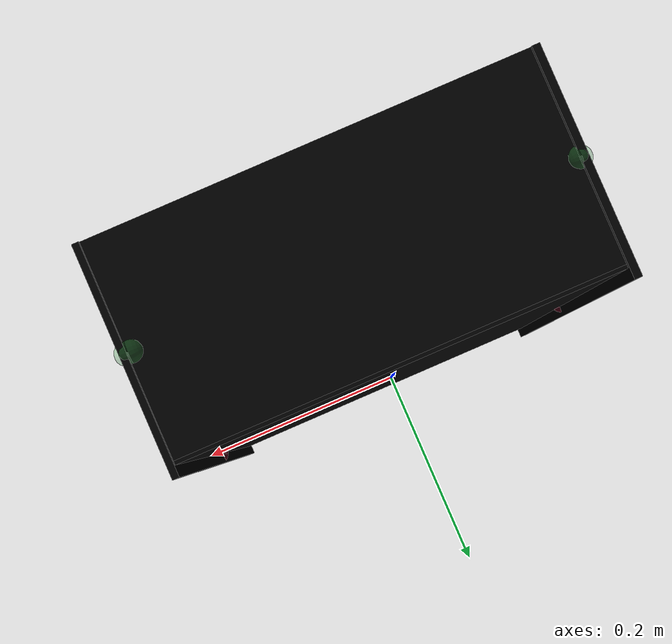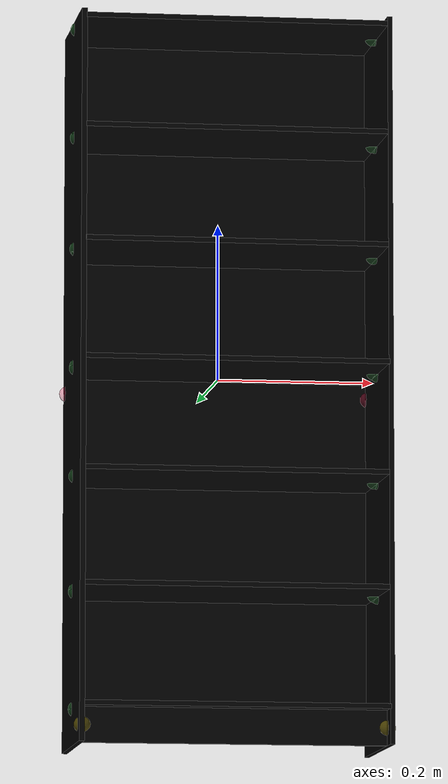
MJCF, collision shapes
<mujoco model="bookcase_billy_0191">
    <asset>
        <mesh file="bookcase_billy_0191/0.stl" name="part0" scale="0.0005 0.0005 0.0005"/>
        <mesh file="bookcase_billy_0191/9.stl" name="part9" scale="0.0005 0.0005 0.0005"/>
        <mesh file="bookcase_billy_0191/8.stl" name="part8" scale="0.0005 0.0005 0.0005"/>
        <mesh file="bookcase_billy_0191/7.stl" name="part7" scale="0.0005 0.0005 0.0005"/>
        <mesh file="bookcase_billy_0191/6.stl" name="part6" scale="0.0005 0.0005 0.0005"/>
        <mesh file="bookcase_billy_0191/5.stl" name="part5" scale="0.0005 0.0005 0.0005"/>
        <mesh file="bookcase_billy_0191/4.stl" name="part4" scale="0.0005 0.0005 0.0005"/>
        <mesh file="bookcase_billy_0191/3.stl" name="part3" scale="0.0005 0.0005 0.0005"/>
        <mesh file="bookcase_billy_0191/2.stl" name="part2" scale="0.0005 0.0005 0.0005"/>
        <mesh file="bookcase_billy_0191/10.stl" name="part10" scale="0.0005 0.0005 0.0005"/>
        <mesh file="bookcase_billy_0191/1.stl" name="part1" scale="0.0005 0.0005 0.0005"/>
    </asset>
    <equality>
        <weld active="false" body1="0_part0" body2="4_part4" solimp="1 1 0.5" solref="0.01 0.3"/>
        <weld active="false" body1="0_part0" body2="6_part6" solimp="1 1 0.5" solref="0.01 0.3"/>
        <weld active="false" body1="0_part0" body2="3_part3" solimp="1 1 0.5" solref="0.01 0.3"/>
        <weld active="false" body1="0_part0" body2="1_part1" solimp="1 1 0.5" solref="0.01 0.3"/>
        <weld active="false" body1="10_part10" body2="3_part3" solimp="1 1 0.5" solref="0.01 0.3"/>
        <weld active="false" body1="10_part10" body2="1_part1" solimp="1 1 0.5" solref="0.01 0.3"/>
        <weld active="false" body1="9_part9" body2="3_part3" solimp="1 1 0.5" solref="0.01 0.3"/>
        <weld active="false" body1="9_part9" body2="1_part1" solimp="1 1 0.5" solref="0.01 0.3"/>
        <weld active="false" body1="8_part8" body2="3_part3" solimp="1 1 0.5" solref="0.01 0.3"/>
        <weld active="false" body1="8_part8" body2="1_part1" solimp="1 1 0.5" solref="0.01 0.3"/>
        <weld active="false" body1="7_part7" body2="3_part3" solimp="1 1 0.5" solref="0.01 0.3"/>
        <weld active="false" body1="7_part7" body2="1_part1" solimp="1 1 0.5" solref="0.01 0.3"/>
        <weld active="false" body1="6_part6" body2="3_part3" solimp="1 1 0.5" solref="0.01 0.3"/>
        <weld active="false" body1="6_part6" body2="1_part1" solimp="1 1 0.5" solref="0.01 0.3"/>
        <weld active="false" body1="5_part5" body2="3_part3" solimp="1 1 0.5" solref="0.01 0.3"/>
        <weld active="false" body1="5_part5" body2="1_part1" solimp="1 1 0.5" solref="0.01 0.3"/>
        <weld active="false" body1="4_part4" body2="3_part3" solimp="1 1 0.5" solref="0.01 0.3"/>
        <weld active="false" body1="4_part4" body2="1_part1" solimp="1 1 0.5" solref="0.01 0.3"/>
        <weld active="false" body1="4_part4" body2="2_part2" solimp="1 1 0.5" solref="0.01 0.3"/>
        <weld active="false" body1="5_part5" body2="1_part1" solimp="1 1 0.5" solref="0.01 0.3"/>
        <weld active="false" body1="5_part5" body2="3_part3" solimp="1 1 0.5" solref="0.01 0.3"/>
        <weld active="false" body1="10_part10" body2="1_part1" solimp="1 1 0.5" solref="0.01 0.3"/>
        <weld active="false" body1="10_part10" body2="3_part3" solimp="1 1 0.5" solref="0.01 0.3"/>
        <weld active="false" body1="4_part4" body2="1_part1" solimp="1 1 0.5" solref="0.01 0.3"/>
        <weld active="false" body1="4_part4" body2="3_part3" solimp="1 1 0.5" solref="0.01 0.3"/>
        <weld active="false" body1="9_part9" body2="1_part1" solimp="1 1 0.5" solref="0.01 0.3"/>
        <weld active="false" body1="9_part9" body2="3_part3" solimp="1 1 0.5" solref="0.01 0.3"/>
        <weld active="false" body1="8_part8" body2="1_part1" solimp="1 1 0.5" solref="0.01 0.3"/>
        <weld active="false" body1="8_part8" body2="3_part3" solimp="1 1 0.5" solref="0.01 0.3"/>
        <weld active="false" body1="7_part7" body2="1_part1" solimp="1 1 0.5" solref="0.01 0.3"/>
        <weld active="false" body1="7_part7" body2="3_part3" solimp="1 1 0.5" solref="0.01 0.3"/>
        <weld active="false" body1="6_part6" body2="1_part1" solimp="1 1 0.5" solref="0.01 0.3"/>
        <weld active="false" body1="6_part6" body2="3_part3" solimp="1 1 0.5" solref="0.01 0.3"/>
        <weld active="false" body1="1_part1" body2="2_part2" solimp="1 1 0.5" solref="0.01 0.3"/>
        <weld active="false" body1="3_part3" body2="2_part2" solimp="1 1 0.5" solref="0.01 0.3"/>
        <weld active="false" body1="0_part0" body2="1_part1" solimp="1 1 0.5" solref="0.01 0.3"/>
        <weld active="false" body1="0_part0" body2="3_part3" solimp="1 1 0.5" solref="0.01 0.3"/>
    </equality>
    <worldbody>
        <body name="0_part0" pos="-0.0 0.0 -0.0" quat="1 0 0 0">
            <geom conaffinity="0" contype="0" density="0" mesh="part0" name="0_part0_mesh" pos="0.0 0.0 0.0"
                  rgba="0.82 0.71 0.55 1" type="mesh"/>
            <site name="0_part0_horizontal_radius_site" pos="-0.0 0.0 -0.0" quat="1 0 0 0" rgba="0 0 0 0"
                  size="0.0005"/>
            <site name="0_part0_top_site" pos="0.0 0.0 0.43497500000000006" quat="1 0 0 0" rgba="0 0 0 0"
                  size="0.0005"/>
            <site name="0_part0_bottom_site" pos="0.0 0.0 -0.43497500000000006" quat="1 0 0 0" rgba="0 0 0 0"
                  size="0.0005"/>
            <site name="0_part0_corner_site8" pos="-0.19208750000000002 0.0017216291 0.43497500000000006" quat="1 0 0 0"
                  rgba="0 0 0 0" size="0.01"/>
            <site name="0_part0_corner_site7" pos="0.19208750000000002 0.0017216291 0.43497500000000006" quat="1 0 0 0"
                  rgba="0 0 0 0" size="0.01"/>
            <site name="0_part0_corner_site6" pos="0.19208750000000002 -0.0017216291 0.43497500000000006" quat="1 0 0 0"
                  rgba="0 0 0 0" size="0.01"/>
            <site name="0_part0_corner_site5" pos="-0.19208750000000002 -0.0017216291 0.43497500000000006"
                  quat="1 0 0 0" rgba="0 0 0 0" size="0.01"/>
            <site name="0_part0_corner_site4" pos="-0.19208750000000002 0.0017216291 -0.43497500000000006"
                  quat="1 0 0 0" rgba="0 0 0 0" size="0.01"/>
            <site name="0_part0_corner_site3" pos="0.19208750000000002 0.0017216291 -0.43497500000000006" quat="1 0 0 0"
                  rgba="0 0 0 0" size="0.01"/>
            <site name="0_part0_corner_site2" pos="0.19208750000000002 -0.0017216291 -0.43497500000000006"
                  quat="1 0 0 0" rgba="0 0 0 0" size="0.01"/>
            <site name="0_part0_corner_site1" pos="-0.19208750000000002 -0.0017216291 -0.43497500000000006"
                  quat="1 0 0 0" rgba="0 0 0 0" size="0.01"/>
            <site name="back-wall,0,180,conn_site1" pos="-0.1935 -0.002 -0.02222499" quat="0.707 0.707 0 0"
                  rgba="0.9019 0.0980 0.2941 0.3" size="0.01"/>
            <site name="back-wall,0,180,conn_site3" pos="0.1955 0.0015 -0.02222499" quat="0.707 0.707 0 0"
                  rgba="0.9019 0.0980 0.2941 0.3" size="0.01"/>
            <geom density="50" name="noviz_collision_0_part0_0" pos="0.0 0.0 0.0" quat="1 0 0 0" rgba="0 0 0 0"
                  size="0.19209 0.00172 0.434975" solref="0.001 1" type="box"/>
        </body>
        <body name="10_part10" pos="1.5e-09 -0.09372957270000001 -0.2831041687" quat="1 0 0 0">
            <geom conaffinity="0" contype="0" density="0" mesh="part9" name="10_part10_mesh" pos="0.0 0.0 0.0"
                  rgba="0.82 0.71 0.55 1" type="mesh"/>
            <site name="10_part10_horizontal_radius_site" pos="-1.5e-09 1.4e-09 0.0" quat="1 0 0 0" rgba="0 0 0 0"
                  size="0.0005"/>
            <site name="10_part10_top_site" pos="-1.5e-09 1.4500000000000002e-09 0.00317500305" quat="1 0 0 0"
                  rgba="0 0 0 0" size="0.0005"/>
            <site name="10_part10_bottom_site" pos="-1.5e-09 1.4500000000000002e-09 -0.00317500305" quat="1 0 0 0"
                  rgba="0 0 0 0" size="0.0005"/>
            <site name="10_part10_corner_site8" pos="-0.190500003 0.09200794505000001 0.00317500305" quat="1 0 0 0"
                  rgba="0 0 0 0" size="0.01"/>
            <site name="10_part10_corner_site7" pos="0.1905 0.09200794505000001 0.00317500305" quat="1 0 0 0"
                  rgba="0 0 0 0" size="0.01"/>
            <site name="10_part10_corner_site6" pos="0.1905 -0.0920079422 0.00317500305" quat="1 0 0 0" rgba="0 0 0 0"
                  size="0.01"/>
            <site name="10_part10_corner_site5" pos="-0.190500003 -0.0920079422 0.00317500305" quat="1 0 0 0"
                  rgba="0 0 0 0" size="0.01"/>
            <site name="10_part10_corner_site4" pos="-0.190500003 0.09200794505000001 -0.00317500305" quat="1 0 0 0"
                  rgba="0 0 0 0" size="0.01"/>
            <site name="10_part10_corner_site3" pos="0.1905 0.09200794505000001 -0.00317500305" quat="1 0 0 0"
                  rgba="0 0 0 0" size="0.01"/>
            <site name="10_part10_corner_site2" pos="0.1905 -0.0920079422 -0.00317500305" quat="1 0 0 0" rgba="0 0 0 0"
                  size="0.01"/>
            <site name="10_part10_corner_site1" pos="-0.190500003 -0.0920079422 -0.00317500305" quat="1 0 0 0"
                  rgba="0 0 0 0" size="0.01"/>
            <site name="flat-wall,0,180,conn_site10l" pos="-0.1908 0.001621 0.0" quat="0.707 0 -0.707 0"
                  rgba="0.2352 0.7058 0.2941 0.3" size="0.01"/>
            <site name="flat-wall,0,180,conn_site10r" pos="0.18695 0.001621 0.0" quat="0.707 0 0.707 0"
                  rgba="0.2352 0.7058 0.2941 0.3" size="0.01"/>
            <geom density="50" name="noviz_collision_10_part10_0" pos="0.0 0.0 0.0" quat="1 0 0 0" rgba="0 0 0 0"
                  size="0.1905 0.09201 0.003175" solref="0.001 1" type="box"/>
        </body>
        <body name="9_part9" pos="1.5e-09 -0.09372957270000001 -0.13917083435000002" quat="1 0 0 0">
            <geom conaffinity="0" contype="0" density="0" mesh="part9" name="9_part9_mesh" pos="0.0 0.0 0.0"
                  rgba="0.82 0.71 0.55 1" type="mesh"/>
            <site name="9_part9_horizontal_radius_site" pos="-1.5e-09 1.4e-09 0.0" quat="1 0 0 0" rgba="0 0 0 0"
                  size="0.0005"/>
            <site name="9_part9_top_site" pos="-1.5e-09 1.4500000000000002e-09 0.00317500305" quat="1 0 0 0"
                  rgba="0 0 0 0" size="0.0005"/>
            <site name="9_part9_bottom_site" pos="-1.5e-09 1.4500000000000002e-09 -0.00317500305" quat="1 0 0 0"
                  rgba="0 0 0 0" size="0.0005"/>
            <site name="9_part9_corner_site8" pos="-0.190500003 0.09200794505000001 0.00317500305" quat="1 0 0 0"
                  rgba="0 0 0 0" size="0.01"/>
            <site name="9_part9_corner_site7" pos="0.1905 0.09200794505000001 0.00317500305" quat="1 0 0 0"
                  rgba="0 0 0 0" size="0.01"/>
            <site name="9_part9_corner_site6" pos="0.1905 -0.0920079422 0.00317500305" quat="1 0 0 0" rgba="0 0 0 0"
                  size="0.01"/>
            <site name="9_part9_corner_site5" pos="-0.190500003 -0.0920079422 0.00317500305" quat="1 0 0 0"
                  rgba="0 0 0 0" size="0.01"/>
            <site name="9_part9_corner_site4" pos="-0.190500003 0.09200794505000001 -0.00317500305" quat="1 0 0 0"
                  rgba="0 0 0 0" size="0.01"/>
            <site name="9_part9_corner_site3" pos="0.1905 0.09200794505000001 -0.00317500305" quat="1 0 0 0"
                  rgba="0 0 0 0" size="0.01"/>
            <site name="9_part9_corner_site2" pos="0.1905 -0.0920079422 -0.00317500305" quat="1 0 0 0" rgba="0 0 0 0"
                  size="0.01"/>
            <site name="9_part9_corner_site1" pos="-0.190500003 -0.0920079422 -0.00317500305" quat="1 0 0 0"
                  rgba="0 0 0 0" size="0.01"/>
            <site name="flat-wall,0,180,conn_site9l" pos="-0.1908 0.001621 0.0" quat="0.707 0 -0.707 0"
                  rgba="0.2352 0.7058 0.2941 0.3" size="0.01"/>
            <site name="flat-wall,0,180,conn_site9r" pos="0.18695 0.001621 0.0" quat="0.707 0 0.707 0"
                  rgba="0.2352 0.7058 0.2941 0.3" size="0.01"/>
            <geom density="50" name="noviz_collision_9_part9_0" pos="0.0 0.0 0.0" quat="1 0 0 0" rgba="0 0 0 0"
                  size="0.1905 0.09201 0.003175" solref="0.001 1" type="box"/>
        </body>
        <body name="8_part8" pos="1.5e-09 -0.09372957270000001 0.29262917685" quat="1 0 0 0">
            <geom conaffinity="0" contype="0" density="0" mesh="part8" name="8_part8_mesh" pos="0.0 0.0 0.0"
                  rgba="0.82 0.71 0.55 1" type="mesh"/>
            <site name="8_part8_horizontal_radius_site" pos="-1.5e-09 1.4e-09 0.0" quat="1 0 0 0" rgba="0 0 0 0"
                  size="0.0005"/>
            <site name="8_part8_top_site" pos="-1.5e-09 1.4500000000000002e-09 0.0031750102" quat="1 0 0 0"
                  rgba="0 0 0 0" size="0.0005"/>
            <site name="8_part8_bottom_site" pos="-1.5e-09 1.4500000000000002e-09 -0.00317501015" quat="1 0 0 0"
                  rgba="0 0 0 0" size="0.0005"/>
            <site name="8_part8_corner_site8" pos="-0.190500003 0.09200794505000001 0.0031750102" quat="1 0 0 0"
                  rgba="0 0 0 0" size="0.01"/>
            <site name="8_part8_corner_site7" pos="0.1905 0.09200794505000001 0.0031750102" quat="1 0 0 0"
                  rgba="0 0 0 0" size="0.01"/>
            <site name="8_part8_corner_site6" pos="0.1905 -0.0920079422 0.0031750102" quat="1 0 0 0" rgba="0 0 0 0"
                  size="0.01"/>
            <site name="8_part8_corner_site5" pos="-0.190500003 -0.0920079422 0.0031750102" quat="1 0 0 0"
                  rgba="0 0 0 0" size="0.01"/>
            <site name="8_part8_corner_site4" pos="-0.190500003 0.09200794505000001 -0.00317501015" quat="1 0 0 0"
                  rgba="0 0 0 0" size="0.01"/>
            <site name="8_part8_corner_site3" pos="0.1905 0.09200794505000001 -0.00317501015" quat="1 0 0 0"
                  rgba="0 0 0 0" size="0.01"/>
            <site name="8_part8_corner_site2" pos="0.1905 -0.0920079422 -0.00317501015" quat="1 0 0 0" rgba="0 0 0 0"
                  size="0.01"/>
            <site name="8_part8_corner_site1" pos="-0.190500003 -0.0920079422 -0.00317501015" quat="1 0 0 0"
                  rgba="0 0 0 0" size="0.01"/>
            <site name="flat-wall,0,180,conn_site8l" pos="-0.1908 0.001621 0.0" quat="0.707 0 -0.707 0"
                  rgba="0.2352 0.7058 0.2941 0.3" size="0.01"/>
            <site name="flat-wall,0,180,conn_site8r" pos="0.18695 0.001621 0.0" quat="0.707 0 0.707 0"
                  rgba="0.2352 0.7058 0.2941 0.3" size="0.01"/>
            <geom density="50" name="noviz_collision_8_part8_0" pos="0.0 0.0 0.0" quat="1 0 0 0" rgba="0 0 0 0"
                  size="0.1905 0.09201 0.003175" solref="0.001 1" type="box"/>
        </body>
        <body name="7_part7" pos="1.5e-09 -0.09372957270000001 0.1486958191" quat="1 0 0 0">
            <geom conaffinity="0" contype="0" density="0" mesh="part7" name="7_part7_mesh" pos="0.0 0.0 0.0"
                  rgba="0.82 0.71 0.55 1" type="mesh"/>
            <site name="7_part7_horizontal_radius_site" pos="-1.5e-09 1.4e-09 0.0" quat="1 0 0 0" rgba="0 0 0 0"
                  size="0.0005"/>
            <site name="7_part7_top_site" pos="-1.5e-09 1.4500000000000002e-09 0.0031750183" quat="1 0 0 0"
                  rgba="0 0 0 0" size="0.0005"/>
            <site name="7_part7_bottom_site" pos="-1.5e-09 1.4500000000000002e-09 -0.0031750183" quat="1 0 0 0"
                  rgba="0 0 0 0" size="0.0005"/>
            <site name="7_part7_corner_site8" pos="-0.190500003 0.09200794505000001 0.0031750183" quat="1 0 0 0"
                  rgba="0 0 0 0" size="0.01"/>
            <site name="7_part7_corner_site7" pos="0.1905 0.09200794505000001 0.0031750183" quat="1 0 0 0"
                  rgba="0 0 0 0" size="0.01"/>
            <site name="7_part7_corner_site6" pos="0.1905 -0.0920079422 0.0031750183" quat="1 0 0 0" rgba="0 0 0 0"
                  size="0.01"/>
            <site name="7_part7_corner_site5" pos="-0.190500003 -0.0920079422 0.0031750183" quat="1 0 0 0"
                  rgba="0 0 0 0" size="0.01"/>
            <site name="7_part7_corner_site4" pos="-0.190500003 0.09200794505000001 -0.0031750183" quat="1 0 0 0"
                  rgba="0 0 0 0" size="0.01"/>
            <site name="7_part7_corner_site3" pos="0.1905 0.09200794505000001 -0.0031750183" quat="1 0 0 0"
                  rgba="0 0 0 0" size="0.01"/>
            <site name="7_part7_corner_site2" pos="0.1905 -0.0920079422 -0.0031750183" quat="1 0 0 0" rgba="0 0 0 0"
                  size="0.01"/>
            <site name="7_part7_corner_site1" pos="-0.190500003 -0.0920079422 -0.0031750183" quat="1 0 0 0"
                  rgba="0 0 0 0" size="0.01"/>
            <site name="flat-wall,0,180,conn_site7l" pos="-0.1908 0.001621 0.0" quat="0.707 0 -0.707 0"
                  rgba="0.2352 0.7058 0.2941 0.3" size="0.01"/>
            <site name="flat-wall,0,180,conn_site7r" pos="0.18695 0.001621 0.0" quat="0.707 0 0.707 0"
                  rgba="0.2352 0.7058 0.2941 0.3" size="0.01"/>
            <geom density="50" name="noviz_collision_7_part7_0" pos="0.0 0.0 0.0" quat="1 0 0 0" rgba="0 0 0 0"
                  size="0.1905 0.09201 0.003175" solref="0.001 1" type="box"/>
        </body>
        <body name="6_part6" pos="1.5e-09 -0.09372957270000001 0.4318000061" quat="1 0 0 0">
            <geom conaffinity="0" contype="0" density="0" mesh="part6" name="6_part6_mesh" pos="0.0 0.0 0.0"
                  rgba="0.82 0.71 0.55 1" type="mesh"/>
            <site name="6_part6_horizontal_radius_site" pos="-1.5e-09 1.4e-09 0.0" quat="1 0 0 0" rgba="0 0 0 0"
                  size="0.0005"/>
            <site name="6_part6_top_site" pos="-1.5e-09 1.4500000000000002e-09 0.0031750183" quat="1 0 0 0"
                  rgba="0 0 0 0" size="0.0005"/>
            <site name="6_part6_bottom_site" pos="-1.5e-09 1.4500000000000002e-09 -0.0031750183" quat="1 0 0 0"
                  rgba="0 0 0 0" size="0.0005"/>
            <site name="6_part6_corner_site8" pos="-0.190500003 0.09200794505000001 0.0031750183" quat="1 0 0 0"
                  rgba="0 0 0 0" size="0.01"/>
            <site name="6_part6_corner_site7" pos="0.1905 0.09200794505000001 0.0031750183" quat="1 0 0 0"
                  rgba="0 0 0 0" size="0.01"/>
            <site name="6_part6_corner_site6" pos="0.1905 -0.0920079422 0.0031750183" quat="1 0 0 0" rgba="0 0 0 0"
                  size="0.01"/>
            <site name="6_part6_corner_site5" pos="-0.190500003 -0.0920079422 0.0031750183" quat="1 0 0 0"
                  rgba="0 0 0 0" size="0.01"/>
            <site name="6_part6_corner_site4" pos="-0.190500003 0.09200794505000001 -0.0031750183" quat="1 0 0 0"
                  rgba="0 0 0 0" size="0.01"/>
            <site name="6_part6_corner_site3" pos="0.1905 0.09200794505000001 -0.0031750183" quat="1 0 0 0"
                  rgba="0 0 0 0" size="0.01"/>
            <site name="6_part6_corner_site2" pos="0.1905 -0.0920079422 -0.0031750183" quat="1 0 0 0" rgba="0 0 0 0"
                  size="0.01"/>
            <site name="6_part6_corner_site1" pos="-0.190500003 -0.0920079422 -0.0031750183" quat="1 0 0 0"
                  rgba="0 0 0 0" size="0.01"/>
            <site name="flat-wall,0,180,conn_site6l" pos="-0.1908 0.001621 0.0" quat="0.707 0 -0.707 0"
                  rgba="0.2352 0.7058 0.2941 0.3" size="0.01"/>
            <site name="flat-wall,0,180,conn_site6r" pos="0.18695 0.001621 0.0" quat="0.707 0 0.707 0"
                  rgba="0.2352 0.7058 0.2941 0.3" size="0.01"/>
            <geom density="50" name="noviz_collision_6_part6_0" pos="0.0 0.0 0.0" quat="1 0 0 0" rgba="0 0 0 0"
                  size="0.1905 0.09201 0.003175" solref="0.001 1" type="box"/>
        </body>
        <body name="5_part5" pos="1.5e-09 -0.09372957270000001 3.05e-09" quat="1 0 0 0">
            <geom conaffinity="0" contype="0" density="0" mesh="part4" name="5_part5_mesh" pos="0.0 0.0 0.0"
                  rgba="0.82 0.71 0.55 1" type="mesh"/>
            <site name="5_part5_horizontal_radius_site" pos="-1.5e-09 1.4e-09 -0.0" quat="1 0 0 0" rgba="0 0 0 0"
                  size="0.0005"/>
            <site name="5_part5_top_site" pos="-1.5e-09 1.4500000000000002e-09 0.00317500305" quat="1 0 0 0"
                  rgba="0 0 0 0" size="0.0005"/>
            <site name="5_part5_bottom_site" pos="-1.5e-09 1.4500000000000002e-09 -0.00317500305" quat="1 0 0 0"
                  rgba="0 0 0 0" size="0.0005"/>
            <site name="5_part5_corner_site8" pos="-0.190500003 0.09200794505000001 0.00317500305" quat="1 0 0 0"
                  rgba="0 0 0 0" size="0.01"/>
            <site name="5_part5_corner_site7" pos="0.1905 0.09200794505000001 0.00317500305" quat="1 0 0 0"
                  rgba="0 0 0 0" size="0.01"/>
            <site name="5_part5_corner_site6" pos="0.1905 -0.0920079422 0.00317500305" quat="1 0 0 0" rgba="0 0 0 0"
                  size="0.01"/>
            <site name="5_part5_corner_site5" pos="-0.190500003 -0.0920079422 0.00317500305" quat="1 0 0 0"
                  rgba="0 0 0 0" size="0.01"/>
            <site name="5_part5_corner_site4" pos="-0.190500003 0.09200794505000001 -0.00317500305" quat="1 0 0 0"
                  rgba="0 0 0 0" size="0.01"/>
            <site name="5_part5_corner_site3" pos="0.1905 0.09200794505000001 -0.00317500305" quat="1 0 0 0"
                  rgba="0 0 0 0" size="0.01"/>
            <site name="5_part5_corner_site2" pos="0.1905 -0.0920079422 -0.00317500305" quat="1 0 0 0" rgba="0 0 0 0"
                  size="0.01"/>
            <site name="5_part5_corner_site1" pos="-0.190500003 -0.0920079422 -0.00317500305" quat="1 0 0 0"
                  rgba="0 0 0 0" size="0.01"/>
            <site name="flat-wall,0,180,conn_site5l" pos="-0.1908 0.001621 0.0" quat="0.707 0 -0.707 0"
                  rgba="0.2352 0.7058 0.2941 0.3" size="0.01"/>
            <site name="flat-wall,0,180,conn_site5r" pos="0.18695 0.001621 0.0" quat="0.707 0 0.707 0"
                  rgba="0.2352 0.7058 0.2941 0.3" size="0.01"/>
            <geom density="50" name="noviz_collision_5_part5_0" pos="0.00079 0.0 -2.5e-05" quat="1 0 0 0" rgba="0 0 0 0"
                  size="0.19129 0.092005 0.00315" solref="0.001 1" type="box"/>
        </body>
        <body name="4_part4" pos="1.5e-09 -0.09372957270000001 -0.4318" quat="1 0 0 0">
            <geom conaffinity="0" contype="0" density="0" mesh="part3" name="4_part4_mesh" pos="0.0 0.0 0.0"
                  rgba="0.82 0.71 0.55 1" type="mesh"/>
            <site name="4_part4_horizontal_radius_site" pos="-1.5e-09 1.4e-09 -0.0" quat="1 0 0 0" rgba="0 0 0 0"
                  size="0.0005"/>
            <site name="4_part4_top_site" pos="-1.5e-09 1.4500000000000002e-09 0.003175" quat="1 0 0 0" rgba="0 0 0 0"
                  size="0.0005"/>
            <site name="4_part4_bottom_site" pos="-1.5e-09 1.4500000000000002e-09 -0.003175" quat="1 0 0 0"
                  rgba="0 0 0 0" size="0.0005"/>
            <site name="4_part4_corner_site8" pos="-0.190500003 0.09200794505000001 0.003175" quat="1 0 0 0"
                  rgba="0 0 0 0" size="0.01"/>
            <site name="4_part4_corner_site7" pos="0.1905 0.09200794505000001 0.003175" quat="1 0 0 0" rgba="0 0 0 0"
                  size="0.01"/>
            <site name="4_part4_corner_site6" pos="0.1905 -0.0920079422 0.003175" quat="1 0 0 0" rgba="0 0 0 0"
                  size="0.01"/>
            <site name="4_part4_corner_site5" pos="-0.190500003 -0.0920079422 0.003175" quat="1 0 0 0" rgba="0 0 0 0"
                  size="0.01"/>
            <site name="4_part4_corner_site4" pos="-0.190500003 0.09200794505000001 -0.003175" quat="1 0 0 0"
                  rgba="0 0 0 0" size="0.01"/>
            <site name="4_part4_corner_site3" pos="0.1905 0.09200794505000001 -0.003175" quat="1 0 0 0" rgba="0 0 0 0"
                  size="0.01"/>
            <site name="4_part4_corner_site2" pos="0.1905 -0.0920079422 -0.003175" quat="1 0 0 0" rgba="0 0 0 0"
                  size="0.01"/>
            <site name="4_part4_corner_site1" pos="-0.190500003 -0.0920079422 -0.003175" quat="1 0 0 0" rgba="0 0 0 0"
                  size="0.01"/>
            <site name="flat-wall,0,180,conn_site4l" pos="-0.1908 0.001621 0.0" quat="0.707 0 -0.707 0"
                  rgba="0.2352 0.7058 0.2941 0.3" size="0.01"/>
            <site name="flat-wall,0,180,conn_site4r" pos="0.18695 0.001621 0.0" quat="0.707 0 0.707 0"
                  rgba="0.2352 0.7058 0.2941 0.3" size="0.01"/>
            <geom density="50" name="noviz_collision_4_part4_0" pos="0.00079 0.0 -2.5e-05" quat="1 0 0 0" rgba="0 0 0 0"
                  size="0.19129 0.092005 0.00315" solref="0.001 1" type="box"/>
        </body>
        <body name="3_part3" pos="-0.193675 -0.0904875086 -0.022224987800000002" quat="1 0 0 0">
            <geom conaffinity="0" contype="0" density="0" mesh="part2" name="3_part3_mesh" pos="0.0 0.0 0.0"
                  rgba="0.82 0.71 0.55 1" type="mesh"/>
            <site name="3_part3_horizontal_radius_site" pos="-0.0 1e-09 -0.0" quat="1 0 0 0" rgba="0 0 0 0"
                  size="0.0005"/>
            <site name="3_part3_top_site" pos="0.0 0.095 0.457" quat="1 0 0 0" rgba="0 0 0 0" size="0.0005"/>
            <site name="3_part3_bottom_site" pos="0.0 0.095 -0.457" quat="1 0 0 0" rgba="0 0 0 0" size="0.0005"/>
            <site name="3_part3_corner_site8" pos="-0.003175 0.095 0.457" quat="1 0 0 0" rgba="0 0 0 0" size="0.01"/>
            <site name="3_part3_corner_site7" pos="0.003175 0.095 0.457" quat="1 0 0 0" rgba="0 0 0 0" size="0.01"/>
            <site name="3_part3_corner_site6" pos="0.003175 -0.095 0.457" quat="1 0 0 0" rgba="0 0 0 0" size="0.01"/>
            <site name="3_part3_corner_site5" pos="-0.003175 -0.095 0.457" quat="1 0 0 0" rgba="0 0 0 0" size="0.01"/>
            <site name="3_part3_corner_site4" pos="-0.003175 0.095 -0.457" quat="1 0 0 0" rgba="0 0 0 0" size="0.01"/>
            <site name="3_part3_corner_site3" pos="0.003175 0.095 -0.457" quat="1 0 0 0" rgba="0 0 0 0" size="0.01"/>
            <site name="3_part3_corner_site2" pos="0.003175 -0.095 -0.457" quat="1 0 0 0" rgba="0 0 0 0" size="0.01"/>
            <site name="3_part3_corner_site1" pos="-0.003175 -0.095 -0.457" quat="1 0 0 0" rgba="0 0 0 0" size="0.01"/>
            <site name="wall-back,0,180,conn_site3" pos="0.0 0.0884875 0.0" quat="0.707 0.707 0 0"
                  rgba="0.9019 0.0980 0.2941 0.3" size="0.01"/>
            <site name="wall-flat,0,180,conn_site4l" pos="0.002875 -0.001621025 -0.41092500000000004"
                  quat="0.707 0 -0.707 0" rgba="0.2352 0.7058 0.2941 0.3" size="0.01"/>
            <site name="wall-flat,0,180,conn_site5l" pos="0.0025 -0.001621025 0.019725" quat="0.707 0 -0.707 0"
                  rgba="0.2352 0.7058 0.2941 0.3" size="0.01"/>
            <site name="wall-flat,0,180,conn_site6l" pos="0.0025 -0.001621025 0.454025" quat="0.707 0 -0.707 0"
                  rgba="0.2352 0.7058 0.2941 0.3" size="0.01"/>
            <site name="wall-flat,0,180,conn_site7l" pos="0.0025 -0.001621025 0.171625" quat="0.707 -0 0.707 0"
                  rgba="0.2352 0.7058 0.2941 0.3" size="0.01"/>
            <site name="wall-flat,0,180,conn_site8l" pos="0.0025 -0.001621025 0.314175" quat="0.707 0 -0.707 0"
                  rgba="0.2352 0.7058 0.2941 0.3" size="0.01"/>
            <site name="wall-flat,0,180,conn_site9l" pos="0.0025 -0.001621025 -0.117325" quat="0.707 0 -0.707 0"
                  rgba="0.2352 0.7058 0.2941 0.3" size="0.01"/>
            <site name="wall-flat,0,180,conn_site10l" pos="0.0025 -0.001621025 -0.263075" quat="0.707 0 -0.707 0"
                  rgba="0.2352 0.7058 0.2941 0.3" size="0.01"/>
            <site name="wall-front,0,180,conn_sitel" pos="0.0025 -0.07 -0.434975" quat="0.707 0 -0.707 0"
                  rgba="1.0 0.8823 0.0980 0.3" size="0.01"/>
            <geom density="50" name="noviz_collision_3_part3_0" pos="0.000215 0.0036 0.00272" quat="1 0 0 0"
                  rgba="0 0 0 0" size="0.00339 0.0986 0.45972" solref="0.001 1" type="box"/>
        </body>
        <body name="2_part2" pos="1.5e-09 -0.16069047585000001 -0.4571999996" quat="1 0 0 0">
            <geom conaffinity="0" contype="0" density="0" mesh="part10" name="2_part2_mesh" pos="0.0 0.0 0.0"
                  rgba="0.82 0.71 0.55 1" type="mesh"/>
            <site name="2_part2_horizontal_radius_site" pos="-1.5e-09 -0.0 -0.0" quat="1 0 0 0" rgba="0 0 0 0"
                  size="0.0005"/>
            <site name="2_part2_top_site" pos="-1.5e-09 -5e-11 0.0222250004" quat="1 0 0 0" rgba="0 0 0 0"
                  size="0.0005"/>
            <site name="2_part2_bottom_site" pos="-1.5e-09 -5e-11 -0.0222250004" quat="1 0 0 0" rgba="0 0 0 0"
                  size="0.0005"/>
            <site name="2_part2_corner_site8" pos="-0.19 0.00317500255 0.0222250004" quat="1 0 0 0" rgba="0 0 0 0"
                  size="0.01"/>
            <site name="2_part2_corner_site7" pos="0.19 0.00317500255 0.0222250004" quat="1 0 0 0" rgba="0 0 0 0"
                  size="0.01"/>
            <site name="2_part2_corner_site6" pos="0.19 -0.0031750026 0.0222250004" quat="1 0 0 0" rgba="0 0 0 0"
                  size="0.01"/>
            <site name="2_part2_corner_site5" pos="-0.19 -0.0031750026 0.0222250004" quat="1 0 0 0" rgba="0 0 0 0"
                  size="0.01"/>
            <site name="2_part2_corner_site4" pos="-0.19 0.00317500255 -0.0222250004" quat="1 0 0 0" rgba="0 0 0 0"
                  size="0.01"/>
            <site name="2_part2_corner_site3" pos="0.19 0.00317500255 -0.0222250004" quat="1 0 0 0" rgba="0 0 0 0"
                  size="0.01"/>
            <site name="2_part2_corner_site2" pos="0.19 -0.0031750026 -0.0222250004" quat="1 0 0 0" rgba="0 0 0 0"
                  size="0.01"/>
            <site name="2_part2_corner_site1" pos="-0.19 -0.0031750026 -0.0222250004" quat="1 0 0 0" rgba="0 0 0 0"
                  size="0.01"/>
            <site name="front-wall,0,180,conn_siter" pos="0.19 0.0 0.0" quat="0.707 0 0.707 0"
                  rgba="1.0 0.8823 0.0980 0.3" size="0.01"/>
            <site name="front-wall,0,180,conn_sitel" pos="-0.19 0.0 0.0" quat="0.707 0 -0.707 0"
                  rgba="1.0 0.8823 0.0980 0.3" size="0.01"/>
            <geom density="50" name="noviz_collision_2_part2_0" pos="0.0 0.0 -3.5e-05" quat="1 0 0 0" rgba="0 0 0 0"
                  size="0.19 0.003175 0.02219" solref="0.001 1" type="box"/>
        </body>
        <body name="1_part1" pos="0.19367500615 -0.0904875086 -0.022224987800000002" quat="1 0 0 0">
            <geom conaffinity="0" contype="0" density="0" mesh="part1" name="1_part1_mesh" pos="0.0 0.0 0.0"
                  rgba="0.82 0.71 0.55 1" type="mesh"/>
            <site name="1_part1_horizontal_radius_site" pos="0.0 1e-09 -0.0" quat="1 0 0 0" rgba="0 0 0 0"
                  size="0.0005"/>
            <site name="1_part1_top_site" pos="0.0 9.5e-10 0.457" quat="1 0 0 0" rgba="0 0 0 0" size="0.0005"/>
            <site name="1_part1_bottom_site" pos="0.0 0.095 -0.457" quat="1 0 0 0" rgba="0 0 0 0" size="0.0005"/>
            <site name="1_part1_corner_site8" pos="-0.003175 0.095 0.457" quat="1 0 0 0" rgba="0 0 0 0" size="0.01"/>
            <site name="1_part1_corner_site7" pos="0.003175 0.095 0.457" quat="1 0 0 0" rgba="0 0 0 0" size="0.01"/>
            <site name="1_part1_corner_site6" pos="0.003175 -0.095 0.457" quat="1 0 0 0" rgba="0 0 0 0" size="0.01"/>
            <site name="1_part1_corner_site5" pos="-0.003175 -0.095 0.457" quat="1 0 0 0" rgba="0 0 0 0" size="0.01"/>
            <site name="1_part1_corner_site4" pos="-0.003175 0.095 -0.457" quat="1 0 0 0" rgba="0 0 0 0" size="0.01"/>
            <site name="1_part1_corner_site3" pos="0.003175 0.095 -0.457" quat="1 0 0 0" rgba="0 0 0 0" size="0.01"/>
            <site name="1_part1_corner_site2" pos="0.003175 -0.095 -0.457" quat="1 0 0 0" rgba="0 0 0 0" size="0.01"/>
            <site name="1_part1_corner_site1" pos="-0.003175 -0.095 -0.457" quat="1 0 0 0" rgba="0 0 0 0" size="0.01"/>
            <site name="wall-back,0,180,conn_site1" pos="0.0 0.0884875 0.0" quat="0.707 0.707 0 0"
                  rgba="0.9019 0.0980 0.2941 0.3" size="0.01"/>
            <site name="wall-flat,0,180,conn_site4r" pos="-0.006725005000000001 -0.001621025 -0.41457499999999997"
                  quat="0.707 0 0.707 0" rgba="0.2352 0.7058 0.2941 0.3" size="0.01"/>
            <site name="wall-flat,0,180,conn_site5r" pos="-0.0025 -0.001621025 0.019724985" quat="0.707 0 0.707 0"
                  rgba="0.2352 0.7058 0.2941 0.3" size="0.01"/>
            <site name="wall-flat,0,180,conn_site6r" pos="-0.0025 -0.001621025 0.454025" quat="0.707 0 0.707 0"
                  rgba="0.2352 0.7058 0.2941 0.3" size="0.01"/>
            <site name="wall-flat,0,180,conn_site7r" pos="-0.0025 -0.001621025 0.171625" quat="0.707 0 0.707 0"
                  rgba="0.2352 0.7058 0.2941 0.3" size="0.01"/>
            <site name="wall-flat,0,180,conn_site8r" pos="-0.0025 -0.001621025 0.31417500000000004"
                  quat="0.707 0 0.707 0" rgba="0.2352 0.7058 0.2941 0.3" size="0.01"/>
            <site name="wall-flat,0,180,conn_site9r" pos="-0.0025 -0.001621025 -0.117325" quat="0.707 0 0.707 0"
                  rgba="0.2352 0.7058 0.2941 0.3" size="0.01"/>
            <site name="wall-flat,0,180,conn_site10r" pos="-0.0025 -0.001621025 -0.263075" quat="0.707 0 0.707 0"
                  rgba="0.2352 0.7058 0.2941 0.3" size="0.01"/>
            <site name="wall-front,0,180,conn_siter" pos="-0.0025 -0.07 -0.434975" quat="0.707 0 0.707 0"
                  rgba="1.0 0.8823 0.0980 0.3" size="0.01"/>
            <geom density="50" name="noviz_collision_1_part1_0" pos="-0.000215 0.0036 0.00272" quat="1 0 0 0"
                  rgba="0 0 0 0" size="0.00296 0.0986 0.45972" solref="0.001 1" type="box"/>
        </body>
    </worldbody>
    <actuator/>
    <sensor/>
    <contact/>
    <default/>
</mujoco>
